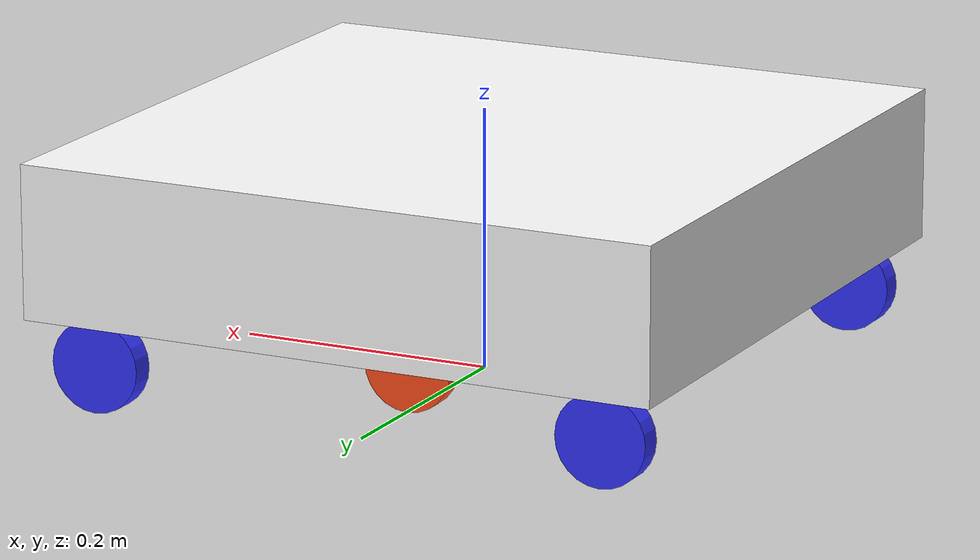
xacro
<?xml version="1.0"?>
<robot xmlns:xacro="http://www.ros.org/wiki/xacro">

  <xacro:include filename="inertial_macros.xacro"/>

  <material name="white">
    <color rgba="1 1 1 1"/>
  </material>

  <material name="orange">
      <color rgba="1 0.3 0.1 1"/>
  </material>

  <material name="blue">
      <color rgba="0.2 0.2 1 1"/>
  </material>

  <material name="black">
      <color rgba="0 0 0 1"/>
  </material>

  <!-- base link -->

  <link name="base_link">

  </link>

  <!-- base footprint link -->

  <joint name="base_footprint_joint" type="fixed">
        <parent link="base_link"/>
        <child link="base_footprint"/>
        <origin xyz="0 0 0" rpy="0 0 0"/>
  </joint>

  <link name="base_footprint">
  </link>

  <!-- chassis link -->

  <joint name="chassis_joint" type="fixed">
    <parent link="base_link"/>
    <child link="chassis"/>
    <origin xyz="-0.25 0 0.07"/>
  </joint>

  <link name="chassis">
    <visual>
      <origin xyz="0.25 0 0.0585"/>
      <geometry>
        <box size="0.5 0.5 0.117"/>
      </geometry>
      <material name="white"/>
    </visual>
    <collision>
      <origin xyz="0.25 0 0.0585"/>
      <geometry>
        <box size="0.5 0.5 0.117"/>
      </geometry>
    </collision>
    <xacro:inertial_box mass="5" x="0.5" y="0.5" z="1">
        <origin xyz="0.25 0 0.0585" rpy="0 0 0"/>
    </xacro:inertial_box>
  </link>

    <!-- left wheel link -->

    <joint name="left_wheel_joint" type="continuous">
    <parent link="base_link"/>
    <child link="left_wheel"/>
    <origin xyz="0 0.12 0.035" rpy="-${pi/2} 0 0"/>
    <axis xyz="0 0 1"/>
  </joint>

  <link name="left_wheel">
    <visual>
      <geometry>
        <cylinder radius="0.035" length="0.015"/>
      </geometry>
      <material name="orange"/>
    </visual>
    <collision>
      <geometry>
        <cylinder radius="0.035" length="0.015"/>
      </geometry>
    </collision>
    <xacro:inertial_cylinder mass="0.2" length="0.015" radius="0.035">
        <origin xyz="0 0 0" rpy="0 0 0"/>
    </xacro:inertial_cylinder>
  </link>

  <!-- right wheel link -->

    <joint name="right_wheel_joint" type="continuous">
    <parent link="base_link"/>
    <child link="right_wheel"/>
    <origin xyz="0 -0.12 0.035" rpy="${pi/2} 0 0"/>
    <axis xyz="0 0 -1"/>
  </joint>

  <link name="right_wheel">
    <visual>
      <geometry>
        <cylinder radius="0.035" length="0.015"/>
      </geometry>
      <material name="orange"/>
    </visual>
    <collision>
      <geometry>
        <cylinder radius="0.035" length="0.015"/>
      </geometry>
    </collision>
    <xacro:inertial_cylinder mass="0.2" length="0.015" radius="0.035">
        <origin xyz="0 0 0" rpy="0 0 0"/>
    </xacro:inertial_cylinder>
  </link>

  <!-- caster wheel UL link  -->

    <joint name="caster_wheel_UL_joint" type="fixed">
    <parent link="base_link"/>
    <child link="caster_wheel_UL"/>
    <origin xyz="${0.25-0.047} ${0.25-(0.059/2)} 0.035" rpy="-${pi/2} 0 0"/>
    <axis xyz="0 0 1"/>
  </joint>

  <link name="caster_wheel_UL">
    <visual>
      <geometry>
        <cylinder radius="0.035" length="0.019"/>
      </geometry>
      <material name="blue"/>
    </visual>
    <collision>
      <geometry>
        <cylinder radius="0.035" length="0.019"/>
      </geometry>
    </collision>
    <xacro:inertial_cylinder mass="0.35" length="0.019" radius="0.035">
        <origin xyz="0 0 0" rpy="0 0 0"/>
    </xacro:inertial_cylinder>
  </link>

  <!-- caster wheel UR link  -->

    <joint name="caster_wheel_UR_joint" type="fixed">
    <parent link="base_link"/>
    <child link="caster_wheel_UR"/>
    <origin xyz="${0.25-0.047} ${-0.25+(0.059/2)} 0.035" rpy="${pi/2} 0 0"/>
    <axis xyz="0 0 1"/>
  </joint>

  <link name="caster_wheel_UR">
    <visual>
      <geometry>
        <cylinder radius="0.035" length="0.019"/>
      </geometry>
      <material name="blue"/>
    </visual>
    <collision>
      <geometry>
        <cylinder radius="0.035" length="0.019"/>
      </geometry>
    </collision>
    <xacro:inertial_cylinder mass="0.35" length="0.019" radius="0.035">
        <origin xyz="0 0 0" rpy="0 0 0"/>
    </xacro:inertial_cylinder>
  </link>

  <!-- caster wheel LL link  -->

    <joint name="caster_wheel_LL_joint" type="fixed">
    <parent link="base_link"/>
    <child link="caster_wheel_LL"/>
    <origin xyz="${-0.25+0.047} ${0.25-(0.059/2)} 0.035" rpy="-${pi/2} 0 0"/>
    <axis xyz="0 0 1"/>
  </joint>

  <link name="caster_wheel_LL">
    <visual>
      <geometry>
        <cylinder radius="0.035" length="0.019"/>
      </geometry>
      <material name="blue"/>
    </visual>
    <collision>
      <geometry>
        <cylinder radius="0.035" length="0.019"/>
      </geometry>
    </collision>
    <xacro:inertial_cylinder mass="0.35" length="0.019" radius="0.035">
        <origin xyz="0 0 0" rpy="0 0 0"/>
    </xacro:inertial_cylinder>
  </link>

<!-- caster wheel LR link  -->

    <joint name="caster_wheel_LR_joint" type="fixed">
    <parent link="base_link"/>
    <child link="caster_wheel_LR"/>
    <origin xyz="${-0.25+0.047} ${-0.25+(0.059/2)} 0.035" rpy="${pi/2} 0 0"/>
    <axis xyz="0 0 1"/>
  </joint>

  <link name="caster_wheel_LR">
    <visual>
      <geometry>
        <cylinder radius="0.035" length="0.019"/>
      </geometry>
      <material name="blue"/>
    </visual>
    <collision>
      <geometry>
        <cylinder radius="0.035" length="0.019"/>
      </geometry>
    </collision>
    <xacro:inertial_cylinder mass="0.35" length="0.019" radius="0.035">
        <origin xyz="0 0 0" rpy="0 0 0"/>
    </xacro:inertial_cylinder>
  </link>
</robot>
